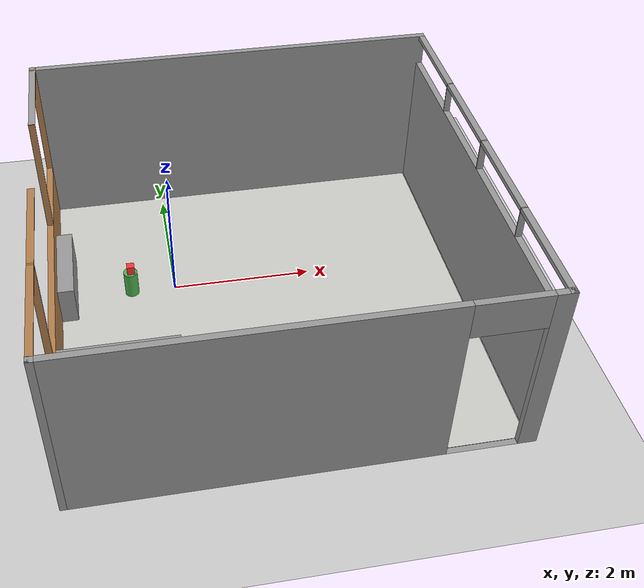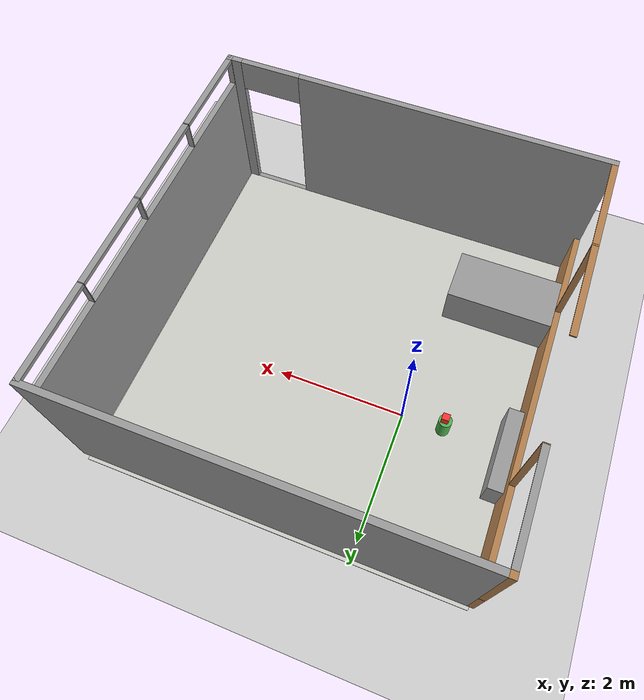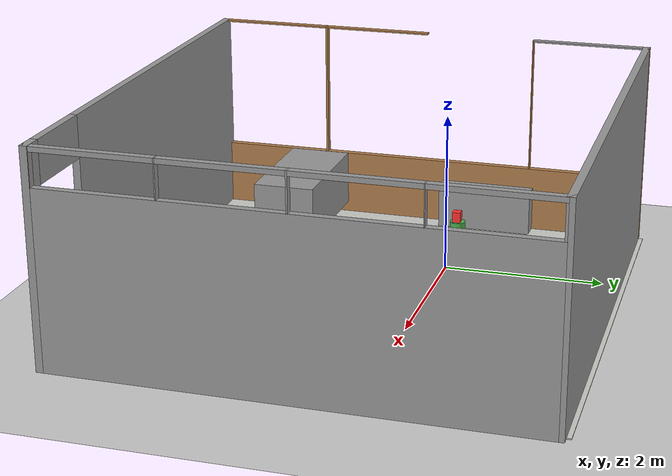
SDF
<sdf version="1.7">
 <world name="default">
  <light name="sun" type="directional">
   <pose>0 0 10 0 -0 0</pose>
   <diffuse>0.8 0.8 0.8 1</diffuse>
   <specular>0.2 0.2 0.2 1</specular>
   <attenuation>
    <range>1000</range>
    <constant>0.9</constant>
    <linear>0.01</linear>
    <quadratic>0.001</quadratic>
   </attenuation>
   <direction>0.01 0.01 -0.9</direction>
   <spot><inner_angle>0</inner_angle><outer_angle>0</outer_angle><falloff>0</falloff></spot>
   <include><uri>model://pedestal_ur5</uri></include>
  </light>
  <model name="ground_plane">
   <static>1</static>
   <link name="link">
    <collision name="collision">
     <geometry><plane><normal>0 0 1</normal><size>100 100</size></plane></geometry>
     <surface>
      <contact><collide_bitmask>65535</collide_bitmask></contact>
      <friction><ode><mu>100</mu><mu2>50</mu2></ode></friction>
     </surface>
    </collision>
    <visual name="visual">
     <cast_shadows>0</cast_shadows>
     <geometry><plane><normal>0 0 1</normal><size>100 100</size></plane></geometry>
     <material>
      <script><uri>file://media/materials/scripts/gazebo.material</uri><name>Gazebo/Grey</name></script>
     </material>
    </visual>
   </link>
  </model>
  <gravity>0 0 -9.8</gravity>
  <magnetic_field>6e-06 2.3e-05 -4.2e-05</magnetic_field>
  <atmosphere type="adiabatic"/>
  <physics name="default_physics" default="0" type="ode">
   <max_step_size>0.001</max_step_size>
   <real_time_factor>1</real_time_factor>
   <real_time_update_rate>1000</real_time_update_rate>
  </physics>
  <scene><ambient>0.4 0.4 0.4 1</ambient><background>0.7 0.7 0.7 1</background><shadows>1</shadows></scene>
  <spherical_coordinates>
   <surface_model>EARTH_WGS84</surface_model>
   <latitude_deg>0</latitude_deg>
   <longitude_deg>0</longitude_deg>
   <elevation>0</elevation>
   <heading_deg>0</heading_deg>
  </spherical_coordinates>
  <model name="B75_Room">
   <pose>1.23 -0.68 0 0 -0 0</pose>
   <link name="Wall_0">
    <pose>-2.94 0 0 0 -0 1.5708</pose>
    <visual name="Wall_0_Visual_0">
     <pose>-2.87782 0 1.305 0 -0 0</pose>
     <geometry><box><size>0.084362 0.09 2.61</size></box></geometry>
     <material>
      <script><uri>file://media/materials/scripts/gazebo.material</uri><name>Gazebo/Grey</name></script>
      <ambient>1 1 1 1</ambient>
     </material>
     <meta><layer>0</layer></meta>
    </visual>
    <collision name="Wall_0_Collision_0">
     <geometry><box><size>0.084362 0.09 2.61</size></box></geometry>
     <pose>-2.87782 0 1.305 0 -0 0</pose>
    </collision>
    <visual name="Wall_0_Visual_1">
     <pose>0.042181 0 0.425 0 -0 0</pose>
     <geometry><box><size>5.75564 0.09 0.85</size></box></geometry>
     <material>
      <script><uri>file://media/materials/scripts/gazebo.material</uri><name>Gazebo/Wood</name></script>
      <ambient>1 1 1 1</ambient>
     </material>
     <meta><layer>0</layer></meta>
    </visual>
    <collision name="Wall_0_Collision_1">
     <geometry><box><size>5.75564 0.09 0.85</size></box></geometry>
     <pose>0.042181 0 0.425 0 -0 0</pose>
    </collision>
    <visual name="Wall_0_Visual_2">
     <pose>-1.41237 0 1.73 0 -0 0</pose>
     <geometry><box><size>0.026548 0.09 1.76</size></box></geometry>
     <material>
      <script><uri>file://media/materials/scripts/gazebo.material</uri><name>Gazebo/Wood</name></script>
      <ambient>1 1 1 1</ambient>
     </material>
     <meta><layer>0</layer></meta>
    </visual>
    <collision name="Wall_0_Collision_2">
     <geometry><box><size>0.026548 0.09 1.76</size></box></geometry>
     <pose>-1.41237 0 1.73 0 -0 0</pose>
    </collision>
    <visual name="Wall_0_Visual_3">
     <pose>1.41154 0 1.73 0 -0 0</pose>
     <geometry><box><size>0.012383 0.09 1.76</size></box></geometry>
     <material>
      <script><uri>file://media/materials/scripts/gazebo.material</uri><name>Gazebo/Wood</name></script>
      <ambient>1 1 1 1</ambient>
     </material>
     <meta><layer>0</layer></meta>
    </visual>
    <collision name="Wall_0_Collision_3">
     <geometry><box><size>0.012383 0.09 1.76</size></box></geometry>
     <pose>1.41154 0 1.73 0 -0 0</pose>
    </collision>
    <visual name="Wall_0_Visual_4">
     <pose>2.87387 0 1.73 0 -0 0</pose>
     <geometry><box><size>0.092266 0.09 1.76</size></box></geometry>
     <material>
      <script><uri>file://media/materials/scripts/gazebo.material</uri><name>Gazebo/Wood</name></script>
      <ambient>1 1 1 1</ambient>
     </material>
     <meta><layer>0</layer></meta>
    </visual>
    <collision name="Wall_0_Collision_4">
     <geometry><box><size>0.092266 0.09 1.76</size></box></geometry>
     <pose>2.87387 0 1.73 0 -0 0</pose>
    </collision>
    <visual name="Wall_0_Visual_5">
     <pose>-2.13064 0 2.6 0 -0 0</pose>
     <geometry><box><size>1.41 0.09 0.02</size></box></geometry>
     <material>
      <script><uri>file://media/materials/scripts/gazebo.material</uri><name>Gazebo/Wood</name></script>
      <ambient>1 1 1 1</ambient>
     </material>
     <meta><layer>0</layer></meta>
    </visual>
    <collision name="Wall_0_Collision_5">
     <geometry><box><size>1.41 0.09 0.02</size></box></geometry>
     <pose>-2.13064 0 2.6 0 -0 0</pose>
    </collision>
    <visual name="Wall_0_Visual_6">
     <pose>-0.701869 0 2.6 0 -0 0</pose>
     <geometry><box><size>1.39444 0.09 0.02</size></box></geometry>
     <material>
      <script><uri>file://media/materials/scripts/gazebo.material</uri><name>Gazebo/Wood</name></script>
      <ambient>1 1 1 1</ambient>
     </material>
     <meta><layer>0</layer></meta>
    </visual>
    <collision name="Wall_0_Collision_6">
     <geometry><box><size>1.39444 0.09 0.02</size></box></geometry>
     <pose>-0.701869 0 2.6 0 -0 0</pose>
    </collision>
    <visual name="Wall_0_Visual_7">
     <pose>2.12273 0 2.6 0 -0 0</pose>
     <geometry><box><size>1.41 0.09 0.02</size></box></geometry>
     <material>
      <script><uri>file://media/materials/scripts/gazebo.material</uri><name>Gazebo/Grey</name></script>
      <ambient>1 1 1 1</ambient>
     </material>
     <meta><layer>0</layer></meta>
    </visual>
    <collision name="Wall_0_Collision_7">
     <geometry><box><size>1.41 0.09 0.02</size></box></geometry>
     <pose>2.12273 0 2.6 0 -0 0</pose>
    </collision>
   </link>
   <link name="Wall_2">
    <collision name="Wall_2_Collision">
     <geometry><box><size>5.97 0.09 2.61</size></box></geometry>
     <pose>0 0 1.305 0 -0 0</pose>
    </collision>
    <visual name="Wall_2_Visual">
     <pose>0 0 1.305 0 -0 0</pose>
     <geometry><box><size>5.97 0.09 2.61</size></box></geometry>
     <material>
      <script><uri>file://media/materials/scripts/gazebo.material</uri><name>Gazebo/Grey</name></script>
      <ambient>1 1 1 1</ambient>
     </material>
     <meta><layer>0</layer></meta>
    </visual>
    <pose>-0 2.875 0 0 -0 0</pose>
   </link>
   <link name="Wall_4">
    <pose>2.94 0 0 0 -0 -1.5708</pose>
    <visual name="Wall_4_Visual_0">
     <pose>-2.88914 0 1.305 0 -0 0</pose>
     <geometry><box><size>0.061715 0.09 2.61</size></box></geometry>
     <material>
      <script><uri>file://media/materials/scripts/gazebo.material</uri><name>Gazebo/Grey</name></script>
      <ambient>1 1 1 1</ambient>
     </material>
     <meta><layer>0</layer></meta>
    </visual>
    <collision name="Wall_4_Collision_0">
     <geometry><box><size>0.061715 0.09 2.61</size></box></geometry>
     <pose>-2.88914 0 1.305 0 -0 0</pose>
    </collision>
    <visual name="Wall_4_Visual_1">
     <pose>0.030858 0 1.075 0 -0 0</pose>
     <geometry><box><size>5.77829 0.09 2.15</size></box></geometry>
     <material>
      <script><uri>file://media/materials/scripts/gazebo.material</uri><name>Gazebo/Grey</name></script>
      <ambient>1 1 1 1</ambient>
     </material>
     <meta><layer>0</layer></meta>
    </visual>
    <collision name="Wall_4_Collision_1">
     <geometry><box><size>5.77829 0.09 2.15</size></box></geometry>
     <pose>0.030858 0 1.075 0 -0 0</pose>
    </collision>
    <visual name="Wall_4_Visual_2">
     <pose>-1.44317 0 2.38 0 -0 0</pose>
     <geometry><box><size>0.010235 0.09 0.46</size></box></geometry>
     <material>
      <script><uri>file://media/materials/scripts/gazebo.material</uri><name>Gazebo/Grey</name></script>
      <ambient>1 1 1 1</ambient>
     </material>
     <meta><layer>0</layer></meta>
    </visual>
    <collision name="Wall_4_Collision_2">
     <geometry><box><size>0.010235 0.09 0.46</size></box></geometry>
     <pose>-1.44317 0 2.38 0 -0 0</pose>
    </collision>
    <visual name="Wall_4_Visual_3">
     <pose>-0.018549 0 2.38 0 -0 0</pose>
     <geometry><box><size>0.019002 0.09 0.46</size></box></geometry>
     <material>
      <script><uri>file://media/materials/scripts/gazebo.material</uri><name>Gazebo/Grey</name></script>
      <ambient>1 1 1 1</ambient>
     </material>
     <meta><layer>0</layer></meta>
    </visual>
    <collision name="Wall_4_Collision_3">
     <geometry><box><size>0.019002 0.09 0.46</size></box></geometry>
     <pose>-0.018549 0 2.38 0 -0 0</pose>
    </collision>
    <visual name="Wall_4_Visual_4">
     <pose>1.40747 0 2.38 0 -0 0</pose>
     <geometry><box><size>0.013027 0.09 0.46</size></box></geometry>
     <material>
      <script><uri>file://media/materials/scripts/gazebo.material</uri><name>Gazebo/Grey</name></script>
      <ambient>1 1 1 1</ambient>
     </material>
     <meta><layer>0</layer></meta>
    </visual>
    <collision name="Wall_4_Collision_4">
     <geometry><box><size>0.013027 0.09 0.46</size></box></geometry>
     <pose>1.40747 0 2.38 0 -0 0</pose>
    </collision>
    <visual name="Wall_4_Visual_5">
     <pose>2.87199 0 2.38 0 -0 0</pose>
     <geometry><box><size>0.096021 0.09 0.46</size></box></geometry>
     <material>
      <script><uri>file://media/materials/scripts/gazebo.material</uri><name>Gazebo/Grey</name></script>
      <ambient>1 1 1 1</ambient>
     </material>
     <meta><layer>0</layer></meta>
    </visual>
    <collision name="Wall_4_Collision_5">
     <geometry><box><size>0.096021 0.09 0.46</size></box></geometry>
     <pose>2.87199 0 2.38 0 -0 0</pose>
    </collision>
    <visual name="Wall_4_Visual_6">
     <pose>-2.15328 0 2.58 0 -0 0</pose>
     <geometry><box><size>1.41 0.09 0.06</size></box></geometry>
     <material>
      <script><uri>file://media/materials/scripts/gazebo.material</uri><name>Gazebo/Grey</name></script>
      <ambient>1 1 1 1</ambient>
     </material>
     <meta><layer>0</layer></meta>
    </visual>
    <collision name="Wall_4_Collision_6">
     <geometry><box><size>1.41 0.09 0.06</size></box></geometry>
     <pose>-2.15328 0 2.58 0 -0 0</pose>
    </collision>
    <visual name="Wall_4_Visual_7">
     <pose>-0.73305 0 2.58 0 -0 0</pose>
     <geometry><box><size>1.41 0.09 0.06</size></box></geometry>
     <material>
      <script><uri>file://media/materials/scripts/gazebo.material</uri><name>Gazebo/Grey</name></script>
      <ambient>1 1 1 1</ambient>
     </material>
     <meta><layer>0</layer></meta>
    </visual>
    <collision name="Wall_4_Collision_7">
     <geometry><box><size>1.41 0.09 0.06</size></box></geometry>
     <pose>-0.73305 0 2.58 0 -0 0</pose>
    </collision>
    <visual name="Wall_4_Visual_8">
     <pose>0.695952 0 2.58 0 -0 0</pose>
     <geometry><box><size>1.41 0.09 0.06</size></box></geometry>
     <material>
      <script><uri>file://media/materials/scripts/gazebo.material</uri><name>Gazebo/Grey</name></script>
      <ambient>1 1 1 1</ambient>
     </material>
     <meta><layer>0</layer></meta>
    </visual>
    <collision name="Wall_4_Collision_8">
     <geometry><box><size>1.41 0.09 0.06</size></box></geometry>
     <pose>0.695952 0 2.58 0 -0 0</pose>
    </collision>
    <visual name="Wall_4_Visual_9">
     <pose>2.11898 0 2.58 0 -0 0</pose>
     <geometry><box><size>1.41 0.09 0.06</size></box></geometry>
     <material>
      <script><uri>file://media/materials/scripts/gazebo.material</uri><name>Gazebo/Grey</name></script>
      <ambient>1 1 1 1</ambient>
     </material>
     <meta><layer>0</layer></meta>
    </visual>
    <collision name="Wall_4_Collision_9">
     <geometry><box><size>1.41 0.09 0.06</size></box></geometry>
     <pose>2.11898 0 2.58 0 -0 0</pose>
    </collision>
   </link>
   <link name="Wall_6">
    <pose>-0 -2.875 0 0 -0 3.14159</pose>
    <visual name="Wall_6_Visual_0">
     <pose>-2.86065 0 1.305 0 -0 0</pose>
     <geometry><box><size>0.248701 0.09 2.61</size></box></geometry>
     <material>
      <script><uri>file://media/materials/scripts/gazebo.material</uri><name>Gazebo/Grey</name></script>
      <ambient>1 1 1 1</ambient>
     </material>
     <meta><layer>0</layer></meta>
    </visual>
    <collision name="Wall_6_Collision_0">
     <geometry><box><size>0.248701 0.09 2.61</size></box></geometry>
     <pose>-2.86065 0 1.305 0 -0 0</pose>
    </collision>
    <visual name="Wall_6_Visual_1">
     <pose>0.594351 0 1.305 0 -0 0</pose>
     <geometry><box><size>4.7813 0.09 2.61</size></box></geometry>
     <material>
      <script><uri>file://media/materials/scripts/gazebo.material</uri><name>Gazebo/Grey</name></script>
      <ambient>1 1 1 1</ambient>
     </material>
     <meta><layer>0</layer></meta>
    </visual>
    <collision name="Wall_6_Collision_1">
     <geometry><box><size>4.7813 0.09 2.61</size></box></geometry>
     <pose>0.594351 0 1.305 0 -0 0</pose>
    </collision>
    <visual name="Wall_6_Visual_2">
     <pose>-2.2663 0 0 0 -0 0</pose>
     <geometry><box><size>0.94 0.09 0</size></box></geometry>
     <material>
      <script><uri>file://media/materials/scripts/gazebo.material</uri><name>Gazebo/Grey</name></script>
      <ambient>1 1 1 1</ambient>
     </material>
     <meta><layer>0</layer></meta>
    </visual>
    <collision name="Wall_6_Collision_2">
     <geometry><box><size>0.94 0.09 0</size></box></geometry>
     <pose>-2.2663 0 0 0 -0 0</pose>
    </collision>
    <visual name="Wall_6_Visual_3">
     <pose>-2.2663 0 2.355 0 -0 0</pose>
     <geometry><box><size>0.94 0.09 0.51</size></box></geometry>
     <material>
      <script><uri>file://media/materials/scripts/gazebo.material</uri><name>Gazebo/Grey</name></script>
      <ambient>1 1 1 1</ambient>
     </material>
     <meta><layer>0</layer></meta>
    </visual>
    <collision name="Wall_6_Collision_3">
     <geometry><box><size>0.94 0.09 0.51</size></box></geometry>
     <pose>-2.2663 0 2.355 0 -0 0</pose>
    </collision>
   </link>
   <static>1</static>
  </model>
  <model name="B75_Objects">
   <link name="link_3">
    <inertial>
     <mass>0.133825</mass>
     <inertia>
      <ixx>0.0148882</ixx>
      <ixy>0</ixy>
      <ixz>0</ixz>
      <iyy>0.00433232</iyy>
      <iyz>0</iyz>
      <izz>0.0117483</izz>
     </inertia>
    </inertial>
    <pose>0.17373 0.768579 0.625903 0 -0 0</pose>
    <visual name="visual">
     <geometry><box><size>0.23 1.24 0.585</size></box></geometry>
     <material>
      <lighting>1</lighting>
      <script><uri>file://media/materials/scripts/gazebo.material</uri><name>Gazebo/Grey</name></script>
      <shader type="pixel"><normal_map>__default__</normal_map></shader>
      <ambient>0.3 0.3 0.3 1</ambient>
      <diffuse>0.7 0.7 0.7 1</diffuse>
      <specular>0.01 0.01 0.01 1</specular>
      <emissive>0 0 0 1</emissive>
     </material>
    </visual>
    <collision name="collision">
     <geometry><box><size>0.23 1.24 0.585</size></box></geometry>
     <surface>
      <friction>
       <ode><mu>1</mu><mu2>1</mu2><fdir1>0 0 0</fdir1><slip1>0</slip1><slip2>0</slip2></ode>
       <torsional>
        <coefficient>1</coefficient>
        <patch_radius>0</patch_radius>
        <surface_radius>0</surface_radius>
        <use_patch_radius>1</use_patch_radius>
        <ode><slip>0</slip></ode>
       </torsional>
      </friction>
      <bounce><restitution_coefficient>0</restitution_coefficient><threshold>1e+06</threshold></bounce>
      <contact>
       <collide_without_contact>0</collide_without_contact>
       <collide_without_contact_bitmask>1</collide_without_contact_bitmask>
       <collide_bitmask>1</collide_bitmask>
       <ode>
        <soft_cfm>0</soft_cfm>
        <soft_erp>0.2</soft_erp>
        <kp>1e+13</kp>
        <kd>1</kd>
        <max_vel>0.01</max_vel>
        <min_depth>0</min_depth>
       </ode>
       <bullet>
        <split_impulse>1</split_impulse>
        <split_impulse_penetration_threshold>-0.01</split_impulse_penetration_threshold>
        <soft_cfm>0</soft_cfm>
        <soft_erp>0.2</soft_erp>
        <kp>1e+13</kp>
        <kd>1</kd>
       </bullet>
      </contact>
     </surface>
    </collision>
   </link>
   <link name="link_4">
    <inertial>
     <mass>1</mass>
     <inertia>
      <ixx>0.166667</ixx>
      <ixy>0</ixy>
      <ixz>0</ixz>
      <iyy>0.166667</iyy>
      <iyz>0</iyz>
      <izz>0.166667</izz>
     </inertia>
    </inertial>
    <pose>0.85855 -1.60142 0.828032 0 -0 0</pose>
    <visual name="visual">
     <geometry><box><size>1.6 0.8 0.71</size></box></geometry>
     <material>
      <lighting>1</lighting>
      <script><uri>file://media/materials/scripts/gazebo.material</uri><name>Gazebo/Grey</name></script>
      <shader type="pixel"><normal_map>__default__</normal_map></shader>
      <ambient>0.3 0.3 0.3 1</ambient>
      <diffuse>0.7 0.7 0.7 1</diffuse>
      <specular>0.01 0.01 0.01 1</specular>
      <emissive>0 0 0 1</emissive>
     </material>
    </visual>
    <collision name="collision">
     <geometry><box><size>1.6 0.8 0.71</size></box></geometry>
     <surface>
      <friction>
       <ode><mu>1</mu><mu2>1</mu2><fdir1>0 0 0</fdir1><slip1>0</slip1><slip2>0</slip2></ode>
       <torsional>
        <coefficient>1</coefficient>
        <patch_radius>0</patch_radius>
        <surface_radius>0</surface_radius>
        <use_patch_radius>1</use_patch_radius>
        <ode><slip>0</slip></ode>
       </torsional>
      </friction>
      <bounce><restitution_coefficient>0</restitution_coefficient><threshold>1e+06</threshold></bounce>
      <contact>
       <collide_without_contact>0</collide_without_contact>
       <collide_without_contact_bitmask>1</collide_without_contact_bitmask>
       <collide_bitmask>1</collide_bitmask>
       <ode>
        <soft_cfm>0</soft_cfm>
        <soft_erp>0.2</soft_erp>
        <kp>1e+13</kp>
        <kd>1</kd>
        <max_vel>0.01</max_vel>
        <min_depth>0</min_depth>
       </ode>
       <bullet>
        <split_impulse>1</split_impulse>
        <split_impulse_penetration_threshold>-0.01</split_impulse_penetration_threshold>
        <soft_cfm>0</soft_cfm>
        <soft_erp>0.2</soft_erp>
        <kp>1e+13</kp>
        <kd>1</kd>
       </bullet>
      </contact>
     </surface>
    </collision>
   </link>
   <static>0</static>
   <pose>-1.72308 -0.59251 -0.333404 -0 -4e-06 7e-06</pose>
  </model>
  <model name="basic_obs">
   <pose>-0.635257 0.00399 0.375 0 -0 -0.930447</pose>
   <link name="link_1">
    <inertial>
     <mass>1</mass>
     <inertia><ixx>0.145833</ixx><ixy>0</ixy><ixz>0</ixz><iyy>0.145833</iyy><iyz>0</iyz><izz>0.125</izz></inertia>
    </inertial>
    <pose>-0 0 -0.175 0 -0 0</pose>
    <visual name="visual">
     <geometry><cylinder><radius>0.1</radius><length>0.4</length></cylinder></geometry>
     <material>
      <lighting>1</lighting>
      <script><uri>file://media/materials/scripts/gazebo.material</uri><name>Gazebo/Grey</name></script>
      <shader type="pixel"><normal_map>__default__</normal_map></shader>
      <ambient>0.3 0.7 0.3 1</ambient>
      <diffuse>0.3 0.7 0.3 1</diffuse>
      <specular>0.01 0.1 0.01 1</specular>
      <emissive>0 0 0 1</emissive>
     </material>
     <cast_shadows>0</cast_shadows>
    </visual>
    <collision name="collision">
     <geometry><cylinder><radius>0.1</radius><length>0.4</length></cylinder></geometry>
     <surface>
      <friction>
       <ode><mu>1</mu><mu2>1</mu2><fdir1>0 0 0</fdir1><slip1>0</slip1><slip2>0</slip2></ode>
       <torsional>
        <coefficient>1</coefficient>
        <patch_radius>0</patch_radius>
        <surface_radius>0</surface_radius>
        <use_patch_radius>1</use_patch_radius>
        <ode><slip>0</slip></ode>
       </torsional>
      </friction>
      <bounce><restitution_coefficient>0</restitution_coefficient><threshold>1e+06</threshold></bounce>
      <contact>
       <collide_without_contact>0</collide_without_contact>
       <collide_without_contact_bitmask>1</collide_without_contact_bitmask>
       <collide_bitmask>1</collide_bitmask>
       <ode>
        <soft_cfm>0</soft_cfm>
        <soft_erp>0.2</soft_erp>
        <kp>1e+13</kp>
        <kd>1</kd>
        <max_vel>0.01</max_vel>
        <min_depth>0</min_depth>
       </ode>
       <bullet>
        <split_impulse>1</split_impulse>
        <split_impulse_penetration_threshold>-0.01</split_impulse_penetration_threshold>
        <soft_cfm>0</soft_cfm>
        <soft_erp>0.2</soft_erp>
        <kp>1e+13</kp>
        <kd>1</kd>
       </bullet>
      </contact>
     </surface>
    </collision>
   </link>
  </model>
  <model name="b75_floor">
   <pose>1.21094 -0.610385 -0.055 0 -0 0</pose>
   <link name="Wall_0">
    <collision name="Wall_0_Collision">
     <geometry><box><size>5.81 5.8 0.1</size></box></geometry>
     <pose>0 0 0.05 -0.055 -0 0</pose>
    </collision>
    <visual name="Wall_0_Visual">
     <pose>0 0 0.01 0 -0 0</pose>
     <geometry><box><size>5.81 5.8 0.1</size></box></geometry>
     <material>
      <script><uri>file://media/materials/scripts/gazebo.material</uri><name>Gazebo/CeilingTiled</name></script>
      <ambient>1 0.764706 0.305882 1</ambient>
     </material>
     <meta><layer>0</layer></meta>
    </visual>
    <pose>0 -0 -0 0 -0 1.5708</pose>
   </link>
   <static>1</static>
  </model>
  <model name="red_cube">
   <link name="link_0">
    <inertial>
     <mass>0.00160118</mass>
     <inertia>
      <ixx>4.04352e-06</ixx>
      <ixy>0</ixy>
      <ixz>0</ixz>
      <iyy>4.17991e-06</iyy>
      <iyz>0</iyz>
      <izz>3.07875e-06</izz>
     </inertia>
    </inertial>
    <visual name="visual">
     <geometry><box><size>0.109763 0.105003 0.138846</size></box></geometry>
     <material>
      <lighting>1</lighting>
      <script><uri>file://media/materials/scripts/gazebo.material</uri><name>Gazebo/Grey</name></script>
      <shader type="pixel"><normal_map>__default__</normal_map></shader>
      <ambient>0.5 0.2 0.2 1</ambient>
      <diffuse>1.0 0.2 0.2 1</diffuse>
      <specular>0.05 0.01 0.01 1</specular>
      <emissive>0 0 0 1</emissive>
     </material>
    </visual>
    <collision name="collision">
     <geometry><box><size>0.109763 0.105003 0.138846</size></box></geometry>
     <surface>
      <friction>
       <ode><mu>1</mu><mu2>1</mu2><fdir1>0 0 0</fdir1><slip1>0</slip1><slip2>0</slip2></ode>
       <torsional>
        <coefficient>1</coefficient>
        <patch_radius>0</patch_radius>
        <surface_radius>0</surface_radius>
        <use_patch_radius>1</use_patch_radius>
        <ode><slip>0</slip></ode>
       </torsional>
      </friction>
      <bounce><restitution_coefficient>0</restitution_coefficient><threshold>1e+06</threshold></bounce>
      <contact>
       <collide_without_contact>0</collide_without_contact>
       <collide_without_contact_bitmask>1</collide_without_contact_bitmask>
       <collide_bitmask>1</collide_bitmask>
       <ode>
        <soft_cfm>0</soft_cfm>
        <soft_erp>0.2</soft_erp>
        <kp>1e+13</kp>
        <kd>1</kd>
        <max_vel>0.01</max_vel>
        <min_depth>0</min_depth>
       </ode>
       <bullet>
        <split_impulse>1</split_impulse>
        <split_impulse_penetration_threshold>-0.01</split_impulse_penetration_threshold>
        <soft_cfm>0</soft_cfm>
        <soft_erp>0.2</soft_erp>
        <kp>1e+13</kp>
        <kd>1</kd>
       </bullet>
      </contact>
     </surface>
    </collision>
   </link>
   <static>0</static>
   <pose>-0.62461 -0.002611 0.468271 0 -0 0</pose>
  </model>
 </world>
</sdf>
